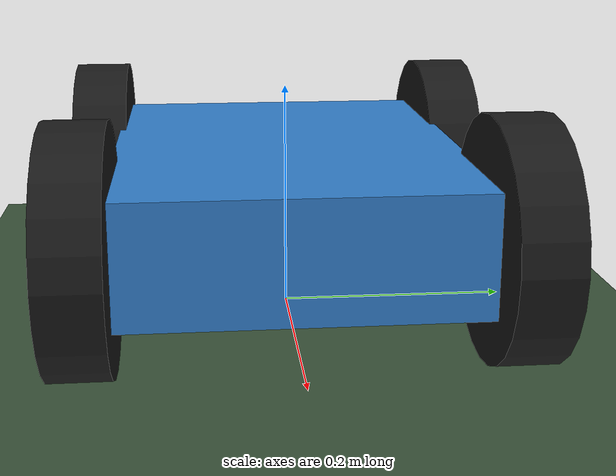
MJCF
<mujoco model="rbx_rover">
  <compiler angle="degree" coordinate="local" inertiafromgeom="true"/>
  <option timestep="0.002" gravity="0 0 -9.81" integrator="implicitfast"/>

  <asset>
    <texture type="skybox" builtin="gradient" rgb1="0.6 0.7 0.9" rgb2="0.1 0.1 0.2" width="128" height="128"/>
    <texture name="grid" type="2d" builtin="checker" rgb1="0.2 0.3 0.2" rgb2="0.25 0.35 0.25" width="256" height="256"/>
    <material name="grid" texture="grid" texrepeat="20 20" reflectance="0.1"/>
  </asset>

  <worldbody>
    <light directional="true" diffuse="0.8 0.8 0.8" pos="0 0 5" dir="0 0 -1"/>
    <geom name="ground" type="plane" size="20 20 0.1" material="grid" friction="1.0 0.005 0.0001"/>

    <geom name="oc_left_wall" type="box" pos="13.000000 3.000000 0.500000"  size="11.000000 0.100000 0.500000" rgba="0.917647 0.482353 0.031373 0" contype="1" conaffinity="1"/>
    <geom name="oc_right_wall" type="box" pos="13.000000 -3.000000 0.500000"  size="11.000000 0.100000 0.500000" rgba="0.917647 0.482353 0.031373 0" contype="1" conaffinity="1"/>
    <geom name="oc_baffle_a" type="box" pos="8.000000 1.700000 0.500000"  size="0.100000 1.300000 0.500000" rgba="0.917647 0.482353 0.031373 0" contype="1" conaffinity="1"/>
    <geom name="oc_baffle_b" type="box" pos="14.000000 -1.700000 0.500000"  size="0.100000 1.300000 0.500000" rgba="0.917647 0.482353 0.031373 0" contype="1" conaffinity="1"/>
    <geom name="oc_ramp_up" type="box" pos="18.995522 0.000000 0.175000" euler="0 -9.970000 0" size="1.010786 3.000000 0.060000" rgba="0.882353 0.803922 0.070588 0" contype="1" conaffinity="1"/>
    <geom name="oc_ramp_plateau" type="box" pos="20.491044 0.000000 0.350000"  size="0.500000 3.000000 0.060000" rgba="0.882353 0.803922 0.070588 0" contype="1" conaffinity="1"/>
    <geom name="oc_ramp_down" type="box" pos="21.986566 0.000000 0.175000" euler="0 9.970000 0" size="1.010786 3.000000 0.060000" rgba="0.882353 0.803922 0.070588 0" contype="1" conaffinity="1"/>

    <geom name="custom_obs_0" type="box" pos="2.000000 0.000000 0.500000" euler="0 0 0.000000" size="1.000000 0.100000 0.500000" rgba="0.6 0.2 0.2 0" contype="1" conaffinity="1"/>
    <geom name="custom_obs_1" type="cylinder" pos="3.500000 0.000000 0.500000" size="0.500000 0.500000" rgba="0.6 0.2 0.2 0" contype="1" conaffinity="1"/>
    <geom name="custom_obs_2" type="box" pos="5.000000 0.000000 0.500000" euler="0 0 0.000000" size="0.500000 0.500000 0.500000" rgba="0.6 0.2 0.2 0" contype="1" conaffinity="1"/>

    <geom name="gate_0_top" type="box" pos="3.000000 0.000000 3.075000"  size="0.075000 1.150000 0.075000" rgba="0.85 0.15 0.15 0" contype="1" conaffinity="1"/>
    <geom name="gate_0_bottom" type="box" pos="3.000000 0.000000 0.925000"  size="0.075000 1.150000 0.075000" rgba="0.85 0.15 0.15 0" contype="1" conaffinity="1"/>
    <geom name="gate_0_left" type="box" pos="3.000000 1.075000 2.000000"  size="0.075000 0.075000 1.000000" rgba="0.85 0.15 0.15 0" contype="1" conaffinity="1"/>
    <geom name="gate_0_right" type="box" pos="3.000000 -1.075000 2.000000"  size="0.075000 0.075000 1.000000" rgba="0.85 0.15 0.15 0" contype="1" conaffinity="1"/>
    <geom name="gate_1_top" type="box" pos="9.000000 0.000000 4.075000"  size="0.075000 1.150000 0.075000" rgba="0.85 0.15 0.15 0" contype="1" conaffinity="1"/>
    <geom name="gate_1_bottom" type="box" pos="9.000000 0.000000 1.925000"  size="0.075000 1.150000 0.075000" rgba="0.85 0.15 0.15 0" contype="1" conaffinity="1"/>
    <geom name="gate_1_left" type="box" pos="9.000000 1.075000 3.000000"  size="0.075000 0.075000 1.000000" rgba="0.85 0.15 0.15 0" contype="1" conaffinity="1"/>
    <geom name="gate_1_right" type="box" pos="9.000000 -1.075000 3.000000"  size="0.075000 0.075000 1.000000" rgba="0.85 0.15 0.15 0" contype="1" conaffinity="1"/>
    <geom name="gate_2_top" type="box" pos="15.000000 0.000000 5.075000"  size="0.075000 1.150000 0.075000" rgba="0.85 0.15 0.15 0" contype="1" conaffinity="1"/>
    <geom name="gate_2_bottom" type="box" pos="15.000000 0.000000 2.925000"  size="0.075000 1.150000 0.075000" rgba="0.85 0.15 0.15 0" contype="1" conaffinity="1"/>
    <geom name="gate_2_left" type="box" pos="15.000000 1.075000 4.000000"  size="0.075000 0.075000 1.000000" rgba="0.85 0.15 0.15 0" contype="1" conaffinity="1"/>
    <geom name="gate_2_right" type="box" pos="15.000000 -1.075000 4.000000"  size="0.075000 0.075000 1.000000" rgba="0.85 0.15 0.15 0" contype="1" conaffinity="1"/>
    <geom name="gate_3_top" type="box" pos="21.000000 0.000000 6.075000"  size="0.075000 1.150000 0.075000" rgba="0.85 0.15 0.15 0" contype="1" conaffinity="1"/>
    <geom name="gate_3_bottom" type="box" pos="21.000000 0.000000 3.925000"  size="0.075000 1.150000 0.075000" rgba="0.85 0.15 0.15 0" contype="1" conaffinity="1"/>
    <geom name="gate_3_left" type="box" pos="21.000000 1.075000 5.000000"  size="0.075000 0.075000 1.000000" rgba="0.85 0.15 0.15 0" contype="1" conaffinity="1"/>
    <geom name="gate_3_right" type="box" pos="21.000000 -1.075000 5.000000"  size="0.075000 0.075000 1.000000" rgba="0.85 0.15 0.15 0" contype="1" conaffinity="1"/>

    <!-- Chassis origin height = wheel_radius_m so wheel bottoms touch z=0. -->
    <body name="chassis" pos="0 0 0.100000">
      <freejoint name="chassis_free"/>
      <geom name="chassis_geom" type="box" size="0.200000 0.150000 0.050000" mass="5.000000" rgba="0.2 0.5 0.8 1"/>
      <camera name="robot_camera" pos="0.200000 0 0.050000" xyaxes="0 -1 0 0 0 1" fovy="100.000000"/>
      <camera name="scene_camera" pos="-2.500000 0.000000 1.650000" xyaxes="0 -1 0 0.5514 0 0.8342" fovy="100.000000"/>

      <body name="wheel1_steer" pos="0.150000 0.170000 0">
        <joint name="wheel1_steer" type="hinge" axis="0 0 1" damping="15.0"
               range="-189.076 189.076" limited="true"
               armature="0.1"/>
        <geom name="wheel1_hub" type="sphere" size="0.025000" mass="0.2"
              contype="0" conaffinity="0" rgba="0.6 0.6 0.6 1"/>
        <body name="wheel1" pos="0 0 0">
          <joint name="wheel1" type="hinge" axis="0 1 0" damping="0.05"/>
          <geom name="wheel1_geom" type="cylinder" size="0.100000 0.025000" euler="90 0 0"
                mass="0.5" rgba="0.1 0.1 0.1 1" friction="1.2 0.005 0.0001"/>
        </body>
      </body>
      <body name="wheel2_steer" pos="0.150000 -0.170000 0">
        <joint name="wheel2_steer" type="hinge" axis="0 0 1" damping="15.0"
               range="-189.076 189.076" limited="true"
               armature="0.1"/>
        <geom name="wheel2_hub" type="sphere" size="0.025000" mass="0.2"
              contype="0" conaffinity="0" rgba="0.6 0.6 0.6 1"/>
        <body name="wheel2" pos="0 0 0">
          <joint name="wheel2" type="hinge" axis="0 1 0" damping="0.05"/>
          <geom name="wheel2_geom" type="cylinder" size="0.100000 0.025000" euler="90 0 0"
                mass="0.5" rgba="0.1 0.1 0.1 1" friction="1.2 0.005 0.0001"/>
        </body>
      </body>
      <body name="wheel3_steer" pos="-0.150000 0.170000 0">
        <joint name="wheel3_steer" type="hinge" axis="0 0 1" damping="15.0"
               range="-189.076 189.076" limited="true"
               armature="0.1"/>
        <geom name="wheel3_hub" type="sphere" size="0.025000" mass="0.2"
              contype="0" conaffinity="0" rgba="0.6 0.6 0.6 1"/>
        <body name="wheel3" pos="0 0 0">
          <joint name="wheel3" type="hinge" axis="0 1 0" damping="0.05"/>
          <geom name="wheel3_geom" type="cylinder" size="0.100000 0.025000" euler="90 0 0"
                mass="0.5" rgba="0.1 0.1 0.1 1" friction="1.2 0.005 0.0001"/>
        </body>
      </body>
      <body name="wheel4_steer" pos="-0.150000 -0.170000 0">
        <joint name="wheel4_steer" type="hinge" axis="0 0 1" damping="15.0"
               range="-189.076 189.076" limited="true"
               armature="0.1"/>
        <geom name="wheel4_hub" type="sphere" size="0.025000" mass="0.2"
              contype="0" conaffinity="0" rgba="0.6 0.6 0.6 1"/>
        <body name="wheel4" pos="0 0 0">
          <joint name="wheel4" type="hinge" axis="0 1 0" damping="0.05"/>
          <geom name="wheel4_geom" type="cylinder" size="0.100000 0.025000" euler="90 0 0"
                mass="0.5" rgba="0.1 0.1 0.1 1" friction="1.2 0.005 0.0001"/>
        </body>
      </body>
    </body>
  </worldbody>

  <!-- MuJoCo only auto-excludes DIRECT parent/child contacts; each wheel is a
       grandchild of the chassis (via its steer body) and overlaps the chassis
       box, so exclude those pairs explicitly. -->
  <contact>
    <exclude body1="chassis" body2="wheel1"/>
    <exclude body1="chassis" body2="wheel2"/>
    <exclude body1="chassis" body2="wheel3"/>
    <exclude body1="chassis" body2="wheel4"/>
  </contact>

  <actuator>
    <velocity name="wheel1_vel" joint="wheel1" kv="8" ctrlrange="-15 15"/>
    <velocity name="wheel2_vel" joint="wheel2" kv="8" ctrlrange="-15 15"/>
    <velocity name="wheel3_vel" joint="wheel3" kv="8" ctrlrange="-15 15"/>
    <velocity name="wheel4_vel" joint="wheel4" kv="8" ctrlrange="-15 15"/>
    <position name="wheel1_steer_pos" joint="wheel1_steer" kp="1000.0" ctrlrange="-3.3 3.3"/>
    <position name="wheel2_steer_pos" joint="wheel2_steer" kp="1000.0" ctrlrange="-3.3 3.3"/>
    <position name="wheel3_steer_pos" joint="wheel3_steer" kp="1000.0" ctrlrange="-3.3 3.3"/>
    <position name="wheel4_steer_pos" joint="wheel4_steer" kp="1000.0" ctrlrange="-3.3 3.3"/>
  </actuator>
</mujoco>
